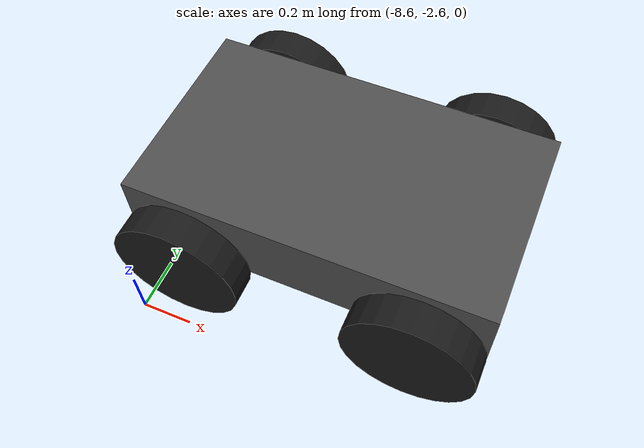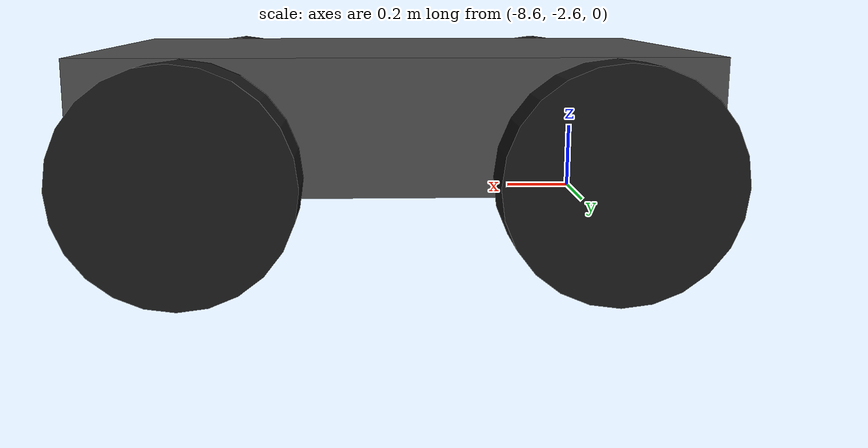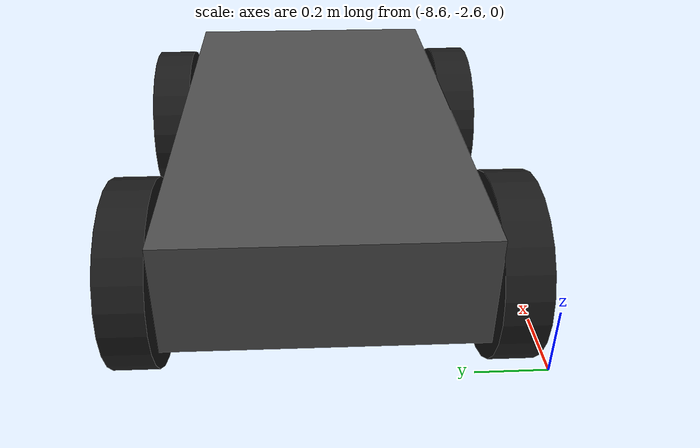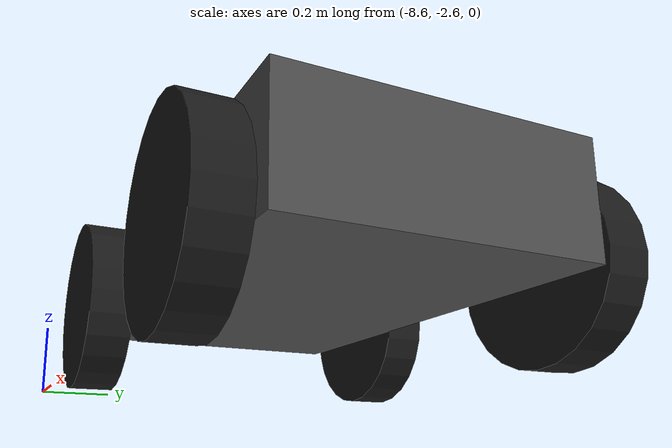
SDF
<?xml version="1.0" ?>
<sdf version="1.10">

  <model name="agri_robot">

    <pose>-8 -2 0.35 0 0 0</pose>

    <!-- CUERPO PRINCIPAL -->

    <link name="base_link">

      <inertial>
        <mass>12.0</mass>
        <inertia>
          <ixx>0.6</ixx>
          <iyy>0.8</iyy>
          <izz>1.0</izz>
        </inertia>
      </inertial>

      <collision name="base_collision">
        <geometry>
          <box>
            <size>1.4 0.8 0.30</size>
          </box>
        </geometry>
      </collision>

      <visual name="base_visual">
        <geometry>
          <box>
            <size>1.4 0.8 0.30</size>
          </box>
        </geometry>

        <material>
          <ambient>0.15 0.15 0.15 1</ambient>
          <diffuse>0.30 0.30 0.30 1</diffuse>
        </material>
      </visual>

    </link>

    <!-- RUEDA DELANTERA IZQUIERDA -->

    <link name="front_left_wheel">

      <pose relative_to="base_link">
        0.45 0.48 -0.10 1.5708 0 0
      </pose>

      <inertial>
        <mass>1.0</mass>
        <inertia>
          <ixx>0.02</ixx>
          <iyy>0.02</iyy>
          <izz>0.02</izz>
        </inertia>
      </inertial>

      <collision name="collision">
        <geometry>
          <cylinder>
            <radius>0.25</radius>
            <length>0.12</length>
          </cylinder>
        </geometry>
      </collision>

      <visual name="visual">
        <geometry>
          <cylinder>
            <radius>0.25</radius>
            <length>0.12</length>
          </cylinder>
        </geometry>

        <material>
          <ambient>0.05 0.05 0.05 1</ambient>
          <diffuse>0.10 0.10 0.10 1</diffuse>
        </material>
      </visual>

    </link>

    <!-- RUEDA TRASERA IZQUIERDA -->

    <link name="rear_left_wheel">

      <pose relative_to="base_link">
        -0.45 0.48 -0.10 1.5708 0 0
      </pose>

      <inertial>
        <mass>1.0</mass>
        <inertia>
          <ixx>0.02</ixx>
          <iyy>0.02</iyy>
          <izz>0.02</izz>
        </inertia>
      </inertial>

      <collision name="collision">
        <geometry>
          <cylinder>
            <radius>0.25</radius>
            <length>0.12</length>
          </cylinder>
        </geometry>
      </collision>

      <visual name="visual">
        <geometry>
          <cylinder>
            <radius>0.25</radius>
            <length>0.12</length>
          </cylinder>
        </geometry>

        <material>
          <ambient>0.05 0.05 0.05 1</ambient>
          <diffuse>0.10 0.10 0.10 1</diffuse>
        </material>
      </visual>

    </link>

    <!-- RUEDA DELANTERA DERECHA -->

    <link name="front_right_wheel">

      <pose relative_to="base_link">
        0.45 -0.48 -0.10 1.5708 0 0
      </pose>

      <inertial>
        <mass>1.0</mass>
        <inertia>
          <ixx>0.02</ixx>
          <iyy>0.02</iyy>
          <izz>0.02</izz>
        </inertia>
      </inertial>

      <collision name="collision">
        <geometry>
          <cylinder>
            <radius>0.25</radius>
            <length>0.12</length>
          </cylinder>
        </geometry>
      </collision>

      <visual name="visual">
        <geometry>
          <cylinder>
            <radius>0.25</radius>
            <length>0.12</length>
          </cylinder>
        </geometry>

        <material>
          <ambient>0.05 0.05 0.05 1</ambient>
          <diffuse>0.10 0.10 0.10 1</diffuse>
        </material>
      </visual>

    </link>

    <!-- RUEDA TRASERA DERECHA -->

    <link name="rear_right_wheel">

      <pose relative_to="base_link">
        -0.45 -0.48 -0.10 1.5708 0 0
      </pose>

      <inertial>
        <mass>1.0</mass>
        <inertia>
          <ixx>0.02</ixx>
          <iyy>0.02</iyy>
          <izz>0.02</izz>
        </inertia>
      </inertial>

      <collision name="collision">
        <geometry>
          <cylinder>
            <radius>0.25</radius>
            <length>0.12</length>
          </cylinder>
        </geometry>
      </collision>

      <visual name="visual">
        <geometry>
          <cylinder>
            <radius>0.25</radius>
            <length>0.12</length>
          </cylinder>
        </geometry>

        <material>
          <ambient>0.05 0.05 0.05 1</ambient>
          <diffuse>0.10 0.10 0.10 1</diffuse>
        </material>
      </visual>

    </link>

    <!-- JOINTS -->

    <joint name="front_left_wheel_joint" type="revolute">
      <parent>base_link</parent>
      <child>front_left_wheel</child>

      <axis>
        <xyz>0 0 1</xyz>
      </axis>
    </joint>

    <joint name="rear_left_wheel_joint" type="revolute">
      <parent>base_link</parent>
      <child>rear_left_wheel</child>

      <axis>
        <xyz>0 0 1</xyz>
      </axis>
    </joint>

    <joint name="front_right_wheel_joint" type="revolute">
      <parent>base_link</parent>
      <child>front_right_wheel</child>

      <axis>
        <xyz>0 0 1</xyz>
      </axis>
    </joint>

    <joint name="rear_right_wheel_joint" type="revolute">
      <parent>base_link</parent>
      <child>rear_right_wheel</child>

      <axis>
        <xyz>0 0 1</xyz>
      </axis>
    </joint>

    <!-- CONTROL DIFERENCIAL -->

    <plugin
      filename="gz-sim-diff-drive-system"
      name="gz::sim::systems::DiffDrive">

      <left_joint>
        front_left_wheel_joint
      </left_joint>

      <left_joint>
        rear_left_wheel_joint
      </left_joint>

      <right_joint>
        front_right_wheel_joint
      </right_joint>

      <right_joint>
        rear_right_wheel_joint
      </right_joint>

      <wheel_separation>0.96</wheel_separation>

      <wheel_radius>0.25</wheel_radius>

      <topic>/agri_robot/cmd_vel</topic>

      <odom_topic>/agri_robot/odom</odom_topic>

      <odom_publish_frequency>30</odom_publish_frequency>

    </plugin>

  </model>

</sdf>
